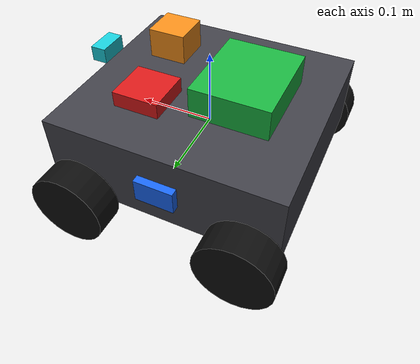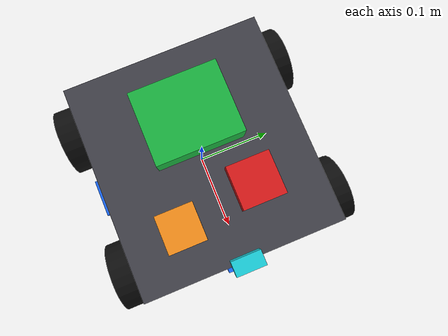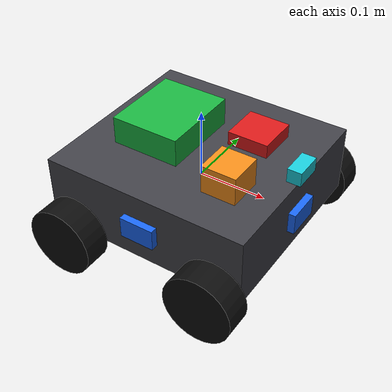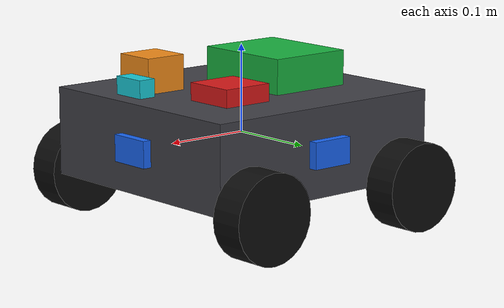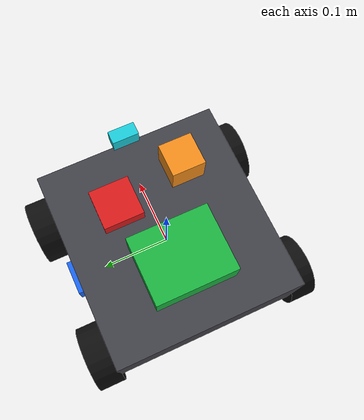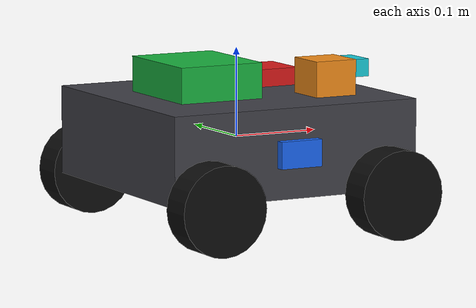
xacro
<?xml version="1.0"?>
<robot name="perceptbot" xmlns:xacro="http://www.ros.org/wiki/xacro">

  <!-- dimensions -->
  <xacro:property name="body_x" value="0.30"/>
  <xacro:property name="body_y" value="0.28"/>
  <xacro:property name="body_z" value="0.10"/>
  <xacro:property name="wheel_r" value="0.05"/>
  <xacro:property name="wheel_w" value="0.04"/>
  <xacro:property name="wheel_dx" value="0.11"/>
  <xacro:property name="wheel_dy" value="0.16"/>

  <!-- materials -->
  <material name="charcoal"><color rgba="0.25 0.25 0.28 1"/></material>
  <material name="black">   <color rgba="0.05 0.05 0.05 1"/></material>
  <material name="us_blue">  <color rgba="0.1 0.4 0.95 1"/></material>
  <material name="bat_green"><color rgba="0.1 0.7 0.25 1"/></material>
  <material name="mcu_red">  <color rgba="0.85 0.1 0.1 1"/></material>
  <material name="mot_orange"><color rgba="0.95 0.55 0.1 1"/></material>
  <material name="cam_cyan"> <color rgba="0.1 0.8 0.85 1"/></material>

  <xacro:macro name="box_inertial" params="mass x y z">
    <inertial>
      <mass value="${mass}"/>
      <inertia ixx="${mass*(y*y+z*z)/12.0}" iyy="${mass*(x*x+z*z)/12.0}"
               izz="${mass*(x*x+y*y)/12.0}" ixy="0" ixz="0" iyz="0"/>
    </inertial>
  </xacro:macro>

  <xacro:macro name="part" params="name x y z px py pz material">
    <link name="${name}">
      <visual>
        <geometry><box size="${x} ${y} ${z}"/></geometry>
        <material name="${material}"/>
      </visual>
      <xacro:box_inertial mass="0.1" x="${x}" y="${y}" z="${z}"/>
    </link>
    <joint name="${name}_joint" type="fixed">
      <parent link="base_link"/>
      <child link="${name}"/>
      <origin xyz="${px} ${py} ${pz}"/>
    </joint>
  </xacro:macro>

  <xacro:macro name="wheel" params="name px py">
    <link name="${name}">
      <visual>
        <origin rpy="1.5708 0 0"/>
        <geometry><cylinder radius="${wheel_r}" length="${wheel_w}"/></geometry>
        <material name="black"/>
      </visual>
      <collision>
        <origin rpy="1.5708 0 0"/>
        <geometry><cylinder radius="${wheel_r}" length="${wheel_w}"/></geometry>
      </collision>
      <xacro:box_inertial mass="0.2" x="${wheel_r}" y="${wheel_w}" z="${wheel_r}"/>
    </link>
    <joint name="${name}_joint" type="continuous">
      <parent link="base_link"/>
      <child link="${name}"/>
      <origin xyz="${px} ${py} ${-body_z/2}"/>
      <axis xyz="0 1 0"/>
    </joint>
  </xacro:macro>

  <xacro:macro name="ultrasonic" params="name px py pz yaw">
    <link name="${name}">
      <visual>
        <geometry><box size="0.02 0.05 0.03"/></geometry>
        <material name="us_blue"/>
      </visual>
      <xacro:box_inertial mass="0.02" x="0.02" y="0.05" z="0.03"/>
    </link>
    <joint name="${name}_joint" type="fixed">
      <parent link="base_link"/>
      <child link="${name}"/>
      <origin xyz="${px} ${py} ${pz}" rpy="0 0 ${yaw}"/>
    </joint>
  </xacro:macro>

  <!-- ===================== chassis ===================== -->
  <link name="base_link">
    <visual>
      <geometry><box size="${body_x} ${body_y} ${body_z}"/></geometry>
      <material name="charcoal"/>
    </visual>
    <collision>
      <geometry><box size="${body_x} ${body_y} ${body_z}"/></geometry>
    </collision>
    <xacro:box_inertial mass="2.0" x="${body_x}" y="${body_y}" z="${body_z}"/>
  </link>

  <!-- ===================== wheels (all driven) ===================== -->
  <xacro:wheel name="wheel_fl" px="${ wheel_dx}" py="${ wheel_dy}"/>
  <xacro:wheel name="wheel_fr" px="${ wheel_dx}" py="${-wheel_dy}"/>
  <xacro:wheel name="wheel_rl" px="${-wheel_dx}" py="${ wheel_dy}"/>
  <xacro:wheel name="wheel_rr" px="${-wheel_dx}" py="${-wheel_dy}"/>

  <!-- ===================== ultrasonics ===================== -->
  <xacro:ultrasonic name="us_front" px="${ body_x/2}" py="0"            pz="0" yaw="0"/>
  <xacro:ultrasonic name="us_left"  px="0"            py="${ body_y/2}" pz="0" yaw="1.5708"/>
  <xacro:ultrasonic name="us_right" px="0"            py="${-body_y/2}" pz="0" yaw="-1.5708"/>

  <!-- ===================== labelled components ===================== -->
  <xacro:part name="battery" x="0.10" y="0.12" z="0.04" px="-0.05" py="0"     pz="${body_z/2+0.02}" material="bat_green"/>
  <xacro:part name="mcu"     x="0.06" y="0.06" z="0.02" px="0.06"  py="0.05"  pz="${body_z/2+0.01}" material="mcu_red"/>
  <xacro:part name="motor"   x="0.05" y="0.05" z="0.04" px="0.08"  py="-0.06" pz="${body_z/2+0.02}" material="mot_orange"/>

  <!-- ===================== NEW: front ESP32-CAM ===================== -->
  <!-- === CHECKPOINT: camera === -->
  <!-- a small cyan box on the front edge, looking forward (+x) -->
  <link name="camera_link">
    <visual>
      <geometry><box size="0.02 0.04 0.02"/></geometry>
      <material name="cam_cyan"/>
    </visual>
    <xacro:box_inertial mass="0.02" x="0.02" y="0.04" z="0.02"/>
  </link>
  <joint name="camera_joint" type="fixed">
    <parent link="base_link"/>
    <child link="camera_link"/>
    <origin xyz="${body_x/2} 0 ${body_z/2+0.02}" rpy="0 0 0"/>
  </joint>
  <!-- optical frame (REP-103: z forward, x right, y down) for image geometry -->
  <link name="camera_optical_frame"/>
  <joint name="camera_optical_joint" type="fixed">
    <parent link="camera_link"/>
    <child link="camera_optical_frame"/>
    <origin xyz="0 0 0" rpy="-1.5708 0 -1.5708"/>
  </joint>
  <!-- === END CHECKPOINT: camera === -->

</robot>
